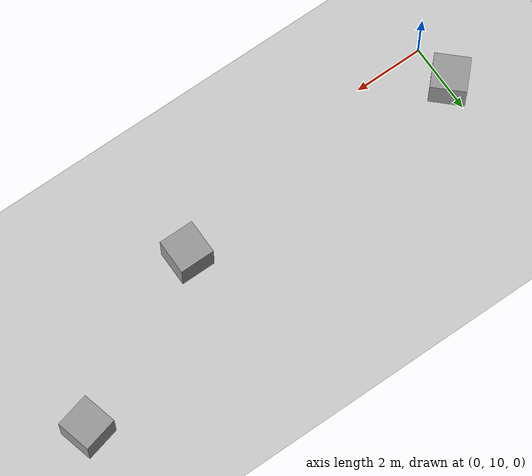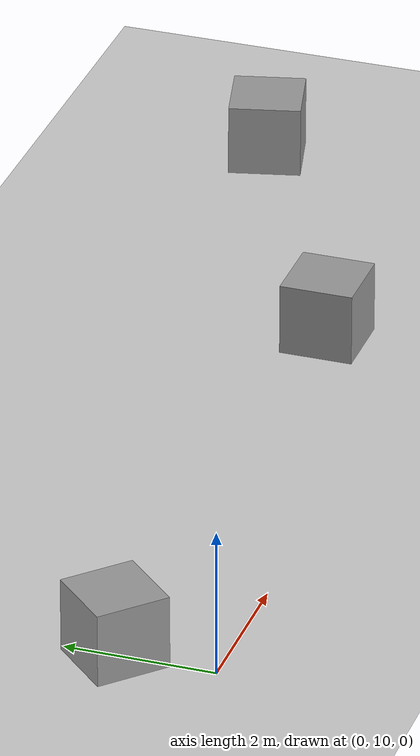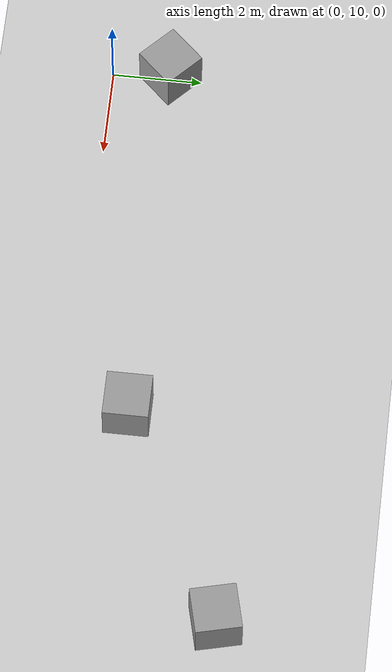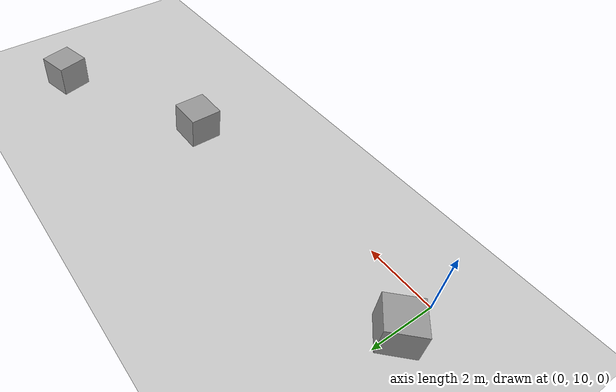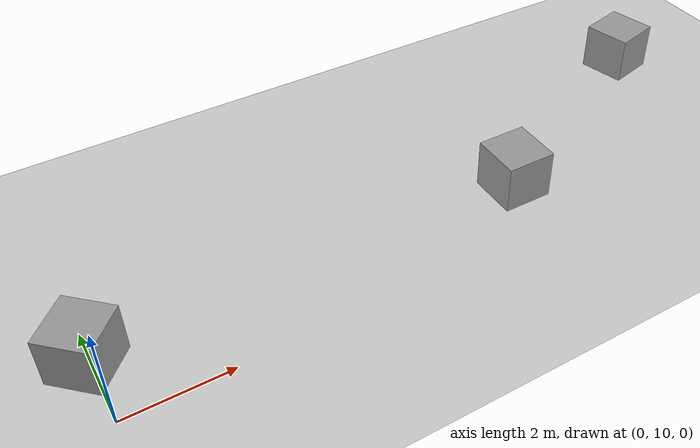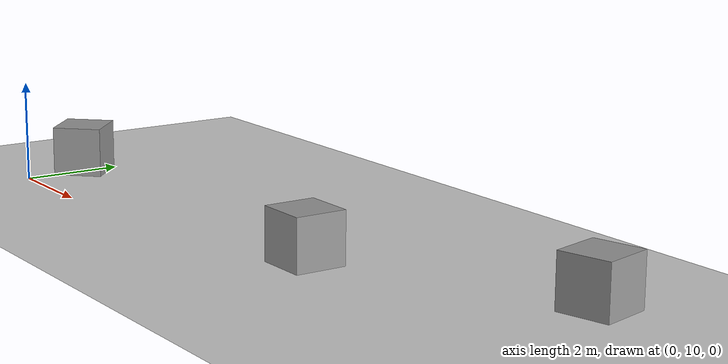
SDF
<sdf version="1.4">
 <world name="default">
  <light name="sun" type="directional">
   <pose>0 0 10 0 -0 0</pose>
   <diffuse>0.8 0.8 0.8 1</diffuse>
   <specular>0.2 0.2 0.2 1</specular>
   <attenuation>
    <range>1000</range>
    <constant>0.9</constant>
    <linear>0.01</linear>
    <quadratic>0.001</quadratic>
   </attenuation>
   <direction>-0.5 0.1 -0.9</direction>
  </light>
  <model name="ground_plane">
   <pose>0.207084 0.806571 0 0 -0 0</pose>
   <static>1</static>
   <link name="link">
    <collision name="collision">
     <geometry><plane><normal>0 0 1</normal><size>100 100</size></plane></geometry>
     <surface><friction><ode><mu>100</mu><mu2>50</mu2></ode></friction></surface>
    </collision>
    <visual name="visual">
     <cast_shadows>0</cast_shadows>
     <geometry><plane><normal>0 0 1</normal><size>100 100</size></plane></geometry>
     <material>
      <script><uri>file://media/materials/scripts/gazebo.material</uri><name>Gazebo/Grey</name></script>
     </material>
    </visual>
    <velocity_decay><linear>0</linear><angular>0</angular></velocity_decay>
   </link>
   <link name="Wall_16">
    <collision name="Wall_16_Collision">
     <geometry><box><size>3.80033 0.2 2.5</size></box></geometry>
     <pose>0 0 1.25 0 -0 0</pose>
    </collision>
    <visual name="Wall_16_Visual">
     <pose>0 0 1.25 0 -0 0</pose>
     <geometry><box><size>3.80033 0.2 2.5</size></box></geometry>
     <material>
      <script><uri>file://media/materials/scripts/gazebo.material</uri><name>Gazebo/Grey</name></script>
     </material>
    </visual>
    <velocity_decay><linear>0</linear><angular>0</angular></velocity_decay>
    <pose>-3.73953 -0.411999 0 0 0 -1.5708</pose>
   </link>
   <link name="Wall_18">
    <collision name="Wall_18_Collision">
     <geometry><box><size>11.9061 0.2 2.5</size></box></geometry>
     <pose>0 0 1.25 0 -0 0</pose>
    </collision>
    <visual name="Wall_18_Visual">
     <pose>0 0 1.25 0 -0 0</pose>
     <geometry><box><size>11.9061 0.2 2.5</size></box></geometry>
     <material>
      <script><uri>file://media/materials/scripts/gazebo.material</uri><name>Gazebo/Grey</name></script>
     </material>
    </visual>
    <velocity_decay><linear>0</linear><angular>0</angular></velocity_decay>
    <pose>2.09341 -2.23228 0 0 -0 0</pose>
   </link>
   <link name="Wall_19">
    <collision name="Wall_19_Collision">
     <geometry><box><size>3.78022 0.2 2.5</size></box></geometry>
     <pose>0 0 1.25 0 -0 0</pose>
    </collision>
    <visual name="Wall_19_Visual">
     <pose>0 0 1.25 0 -0 0</pose>
     <geometry><box><size>3.78022 0.2 2.5</size></box></geometry>
     <material>
      <script><uri>file://media/materials/scripts/gazebo.material</uri><name>Gazebo/Grey</name></script>
     </material>
    </visual>
    <velocity_decay><linear>0</linear><angular>0</angular></velocity_decay>
    <pose>7.94646 -0.442169 0 0 -0 1.5708</pose>
   </link>
   <link name="Wall_20">
    <collision name="Wall_20_Collision">
     <geometry><box><size>1.10511 0.2 2.5</size></box></geometry>
     <pose>0 0 1.25 0 -0 0</pose>
    </collision>
    <visual name="Wall_20_Visual">
     <pose>0 0 1.25 0 -0 0</pose>
     <geometry><box><size>1.10511 0.2 2.5</size></box></geometry>
     <material>
      <script><uri>file://media/materials/scripts/gazebo.material</uri><name>Gazebo/Grey</name></script>
     </material>
    </visual>
    <velocity_decay><linear>0</linear><angular>0</angular></velocity_decay>
    <pose>7.4939 1.34794 0 0 -0 3.14159</pose>
   </link>
   <link name="Wall_23">
    <collision name="Wall_23_Collision">
     <geometry><box><size>1.45615 0.2 2.5</size></box></geometry>
     <pose>0 0 1.25 0 -0 0</pose>
    </collision>
    <visual name="Wall_23_Visual">
     <pose>0 0 1.25 0 -0 0</pose>
     <geometry><box><size>1.45615 0.2 2.5</size></box></geometry>
     <material>
      <script><uri>file://media/materials/scripts/gazebo.material</uri><name>Gazebo/Grey</name></script>
     </material>
    </visual>
    <velocity_decay><linear>0</linear><angular>0</angular></velocity_decay>
    <pose>8.54655 1.33598 0 0 -0 0</pose>
   </link>
   <link name="Wall_24">
    <collision name="Wall_24_Collision">
     <geometry><box><size>0.990907 0.2 2.5</size></box></geometry>
     <pose>0 0 1.25 0 -0 0</pose>
    </collision>
    <visual name="Wall_24_Visual">
     <pose>0 0 1.25 0 -0 0</pose>
     <geometry><box><size>0.990907 0.2 2.5</size></box></geometry>
     <material>
      <script><uri>file://media/materials/scripts/gazebo.material</uri><name>Gazebo/Grey</name></script>
     </material>
    </visual>
    <velocity_decay><linear>0</linear><angular>0</angular></velocity_decay>
    <pose>9.17462 1.73144 0 0 -0 1.5708</pose>
   </link>
   <link name="Wall_25">
    <collision name="Wall_25_Collision">
     <geometry><box><size>16.3438 0.2 2.5</size></box></geometry>
     <pose>0 0 1.25 0 -0 0</pose>
    </collision>
    <visual name="Wall_25_Visual">
     <pose>0 0 1.25 0 -0 0</pose>
     <geometry><box><size>16.3438 0.2 2.5</size></box></geometry>
     <material>
      <script><uri>file://media/materials/scripts/gazebo.material</uri><name>Gazebo/Grey</name></script>
     </material>
    </visual>
    <velocity_decay><linear>0</linear><angular>0</angular></velocity_decay>
    <pose>17.2465 2.12689 0 0 -0 0</pose>
   </link>
   <link name="Wall_26">
    <collision name="Wall_26_Collision">
     <geometry><box><size>5.59677 0.2 2.5</size></box></geometry>
     <pose>0 0 1.25 0 -0 0</pose>
    </collision>
    <visual name="Wall_26_Visual">
     <pose>0 0 1.25 0 -0 0</pose>
     <geometry><box><size>5.59677 0.2 2.5</size></box></geometry>
     <material>
      <script><uri>file://media/materials/scripts/gazebo.material</uri><name>Gazebo/Grey</name></script>
     </material>
    </visual>
    <velocity_decay><linear>0</linear><angular>0</angular></velocity_decay>
    <pose>25.3184 4.82528 0 0 -0 1.5708</pose>
   </link>
   <link name="Wall_27">
    <collision name="Wall_27_Collision">
     <geometry><box><size>6.85292 0.2 2.5</size></box></geometry>
     <pose>0 0 1.25 0 -0 0</pose>
    </collision>
    <visual name="Wall_27_Visual">
     <pose>0 0 1.25 0 -0 0</pose>
     <geometry><box><size>6.85292 0.2 2.5</size></box></geometry>
     <material>
      <script><uri>file://media/materials/scripts/gazebo.material</uri><name>Gazebo/Grey</name></script>
     </material>
    </visual>
    <velocity_decay><linear>0</linear><angular>0</angular></velocity_decay>
    <pose>21.992 7.52367 0 0 -0 3.14159</pose>
   </link>
   <link name="Wall_29">
    <collision name="Wall_29_Collision">
     <geometry><box><size>6.57378 0.2 2.5</size></box></geometry>
     <pose>0 0 1.25 0 -0 0</pose>
    </collision>
    <visual name="Wall_29_Visual">
     <pose>0 0 1.25 0 -0 0</pose>
     <geometry><box><size>6.57378 0.2 2.5</size></box></geometry>
     <material>
      <script><uri>file://media/materials/scripts/gazebo.material</uri><name>Gazebo/Grey</name></script>
     </material>
    </visual>
    <velocity_decay><linear>0</linear><angular>0</angular></velocity_decay>
    <pose>12.4546 7.47714 0 0 -0 3.14159</pose>
   </link>
   <link name="Wall_34">
    <collision name="Wall_34_Collision">
     <geometry><box><size>1.84232 0.2 2.5</size></box></geometry>
     <pose>0 0 1.25 0 -0 0</pose>
    </collision>
    <visual name="Wall_34_Visual">
     <pose>0 0 1.25 0 -0 0</pose>
     <geometry><box><size>1.84232 0.2 2.5</size></box></geometry>
     <material>
      <script><uri>file://media/materials/scripts/gazebo.material</uri><name>Gazebo/Grey</name></script>
     </material>
    </visual>
    <velocity_decay><linear>0</linear><angular>0</angular></velocity_decay>
    <pose>9.17229 2.93644 0 0 -0 1.5708</pose>
   </link>
   <link name="Wall_37">
    <collision name="Wall_37_Collision">
     <geometry><box><size>1.38353 0.2 2.5</size></box></geometry>
     <pose>0 0 1.25 0 -0 0</pose>
    </collision>
    <visual name="Wall_37_Visual">
     <pose>0 0 1.25 0 -0 0</pose>
     <geometry><box><size>1.38353 0.2 2.5</size></box></geometry>
     <material>
      <script><uri>file://media/materials/scripts/gazebo.material</uri><name>Gazebo/Grey</name></script>
     </material>
    </visual>
    <velocity_decay><linear>0</linear><angular>0</angular></velocity_decay>
    <pose>9.2555 8.06153 0 0 -0 1.5708</pose>
   </link>
   <link name="Wall_44">
    <collision name="Wall_44_Collision">
     <geometry><box><size>14.3821 0.2 2.5</size></box></geometry>
     <pose>0 0 1.25 0 -0 0</pose>
    </collision>
    <visual name="Wall_44_Visual">
     <pose>0 0 1.25 0 -0 0</pose>
     <geometry><box><size>14.3821 0.2 2.5</size></box></geometry>
     <material>
      <script><uri>file://media/materials/scripts/gazebo.material</uri><name>Gazebo/Grey</name></script>
     </material>
    </visual>
    <velocity_decay><linear>0</linear><angular>0</angular></velocity_decay>
    <pose>25.3157 14.6721 0 0 -0 1.5708</pose>
   </link>
   <link name="Wall_45">
    <collision name="Wall_45_Collision">
     <geometry><box><size>3.98759 0.2 2.5</size></box></geometry>
     <pose>0 0 1.25 0 -0 0</pose>
    </collision>
    <visual name="Wall_45_Visual">
     <pose>0 0 1.25 0 -0 0</pose>
     <geometry><box><size>3.98759 0.2 2.5</size></box></geometry>
     <material>
      <script><uri>file://media/materials/scripts/gazebo.material</uri><name>Gazebo/Grey</name></script>
     </material>
    </visual>
    <velocity_decay><linear>0</linear><angular>0</angular></velocity_decay>
    <pose>23.422 21.7631 0 0 -0 3.14159</pose>
   </link>
   <link name="Wall_46">
    <collision name="Wall_46_Collision">
     <geometry><box><size>7.27924 0.2 2.5</size></box></geometry>
     <pose>0 0 1.25 0 -0 0</pose>
    </collision>
    <visual name="Wall_46_Visual">
     <pose>0 0 1.25 0 -0 0</pose>
     <geometry><box><size>7.27924 0.2 2.5</size></box></geometry>
     <material>
      <script><uri>file://media/materials/scripts/gazebo.material</uri><name>Gazebo/Grey</name></script>
     </material>
    </visual>
    <velocity_decay><linear>0</linear><angular>0</angular></velocity_decay>
    <pose>17.9885 21.7631 0 0 -0 3.14159</pose>
   </link>
   <link name="Wall_50">
    <collision name="Wall_50_Collision">
     <geometry><box><size>9.4854 0.2 2.5</size></box></geometry>
     <pose>0 0 1.25 0 -0 0</pose>
    </collision>
    <visual name="Wall_50_Visual">
     <pose>0 0 1.25 0 -0 0</pose>
     <geometry><box><size>9.4854 0.2 2.5</size></box></geometry>
     <material>
      <script><uri>file://media/materials/scripts/gazebo.material</uri><name>Gazebo/Grey</name></script>
     </material>
    </visual>
    <velocity_decay><linear>0</linear><angular>0</angular></velocity_decay>
    <pose>25.3024 26.3561 0 0 -0 1.5708</pose>
   </link>
   <link name="Wall_51">
    <collision name="Wall_51_Collision">
     <geometry><box><size>16.1995 0.2 2.5</size></box></geometry>
     <pose>0 0 1.25 0 -0 0</pose>
    </collision>
    <visual name="Wall_51_Visual">
     <pose>0 0 1.25 0 -0 0</pose>
     <geometry><box><size>16.1995 0.2 2.5</size></box></geometry>
     <material>
      <script><uri>file://media/materials/scripts/gazebo.material</uri><name>Gazebo/Grey</name></script>
     </material>
    </visual>
    <velocity_decay><linear>0</linear><angular>0</angular></velocity_decay>
    <pose>17.3026 30.9988 0 0 -0 3.14159</pose>
   </link>
   <link name="Wall_52">
    <collision name="Wall_52_Collision">
     <geometry><box><size>11.7384 0.2 2.5</size></box></geometry>
     <pose>0 0 1.25 0 -0 0</pose>
    </collision>
    <visual name="Wall_52_Visual">
     <pose>0 0 1.25 0 -0 0</pose>
     <geometry><box><size>11.7384 0.2 2.5</size></box></geometry>
     <material>
      <script><uri>file://media/materials/scripts/gazebo.material</uri><name>Gazebo/Grey</name></script>
     </material>
    </visual>
    <velocity_decay><linear>0</linear><angular>0</angular></velocity_decay>
    <pose>9.30287 25.2296 0 0 0 -1.5708</pose>
   </link>
   <link name="Wall_54">
    <collision name="Wall_54_Collision">
     <geometry><box><size>2.13813 0.2 2.5</size></box></geometry>
     <pose>0 0 1.25 0 -0 0</pose>
    </collision>
    <visual name="Wall_54_Visual">
     <pose>0 0 1.25 0 -0 0</pose>
     <geometry><box><size>2.13813 0.2 2.5</size></box></geometry>
     <material>
      <script><uri>file://media/materials/scripts/gazebo.material</uri><name>Gazebo/Grey</name></script>
     </material>
    </visual>
    <velocity_decay><linear>0</linear><angular>0</angular></velocity_decay>
    <pose>10.2754 21.7307 0 0 -0 0</pose>
   </link>
   <link name="Wall_62">
    <collision name="Wall_62_Collision">
     <geometry><box><size>13.5294 0.2 2.5</size></box></geometry>
     <pose>0 0 1.25 0 -0 0</pose>
    </collision>
    <visual name="Wall_62_Visual">
     <pose>0 0 1.25 0 -0 0</pose>
     <geometry><box><size>13.5294 0.2 2.5</size></box></geometry>
     <material>
      <script><uri>file://media/materials/scripts/gazebo.material</uri><name>Gazebo/Grey</name></script>
     </material>
    </visual>
    <velocity_decay><linear>0</linear><angular>0</angular></velocity_decay>
    <pose>-3.7362 8.0034 0 0 -0 1.5708</pose>
   </link>
   <link name="Wall_63">
    <collision name="Wall_63_Collision">
     <geometry><box><size>7.19668 0.2 2.5</size></box></geometry>
     <pose>0 0 1.25 0 -0 0</pose>
    </collision>
    <visual name="Wall_63_Visual">
     <pose>0 0 1.25 0 -0 0</pose>
     <geometry><box><size>7.19668 0.2 2.5</size></box></geometry>
     <material>
      <script><uri>file://media/materials/scripts/gazebo.material</uri><name>Gazebo/Grey</name></script>
     </material>
    </visual>
    <velocity_decay><linear>0</linear><angular>0</angular></velocity_decay>
    <pose>-0.237857 14.6681 0 0 -0 0</pose>
   </link>
   <link name="Wall_65">
    <collision name="Wall_65_Collision">
     <geometry><box><size>7.87371 0.2 2.5</size></box></geometry>
     <pose>0 0 1.25 0 -0 0</pose>
    </collision>
    <visual name="Wall_65_Visual">
     <pose>0 0 1.25 0 -0 0</pose>
     <geometry><box><size>7.87371 0.2 2.5</size></box></geometry>
     <material>
      <script><uri>file://media/materials/scripts/gazebo.material</uri><name>Gazebo/Grey</name></script>
     </material>
    </visual>
    <velocity_decay><linear>0</linear><angular>0</angular></velocity_decay>
    <pose>-3.70459 18.498 0 0 -0 1.5708</pose>
   </link>
   <link name="Wall_66">
    <collision name="Wall_66_Collision">
     <geometry><box><size>6.67789 0.2 2.5</size></box></geometry>
     <pose>0 0 1.25 0 -0 0</pose>
    </collision>
    <visual name="Wall_66_Visual">
     <pose>0 0 1.25 0 -0 0</pose>
     <geometry><box><size>6.67789 0.2 2.5</size></box></geometry>
     <material>
      <script><uri>file://media/materials/scripts/gazebo.material</uri><name>Gazebo/Grey</name></script>
     </material>
    </visual>
    <velocity_decay><linear>0</linear><angular>0</angular></velocity_decay>
    <pose>-0.46564 22.3348 0 0 -0 0</pose>
   </link>
   <link name="Wall_67">
    <collision name="Wall_67_Collision">
     <geometry><box><size>10.2321 0.2 2.5</size></box></geometry>
     <pose>0 0 1.25 0 -0 0</pose>
    </collision>
    <visual name="Wall_67_Visual">
     <pose>0 0 1.25 0 -0 0</pose>
     <geometry><box><size>10.2321 0.2 2.5</size></box></geometry>
     <material>
      <script><uri>file://media/materials/scripts/gazebo.material</uri><name>Gazebo/Grey</name></script>
     </material>
    </visual>
    <velocity_decay><linear>0</linear><angular>0</angular></velocity_decay>
    <pose>2.77331 27.3508 0 0 -0 1.5708</pose>
   </link>
   <link name="Wall_74">
    <collision name="Wall_74_Collision">
     <geometry><box><size>1.63126 0.2 2.5</size></box></geometry>
     <pose>0 0 1.25 0 -0 0</pose>
    </collision>
    <visual name="Wall_74_Visual">
     <pose>0 0 1.25 0 -0 0</pose>
     <geometry><box><size>1.63126 0.2 2.5</size></box></geometry>
     <material>
      <script><uri>file://media/materials/scripts/gazebo.material</uri><name>Gazebo/Grey</name></script>
     </material>
    </visual>
    <velocity_decay><linear>0</linear><angular>0</angular></velocity_decay>
    <pose>9.26213 31.7299 0 0 -0 1.5708</pose>
   </link>
   <link name="Wall_75">
    <collision name="Wall_75_Collision">
     <geometry><box><size>6.64067 0.2 2.5</size></box></geometry>
     <pose>0 0 1.25 0 -0 0</pose>
    </collision>
    <visual name="Wall_75_Visual">
     <pose>0 0 1.25 0 -0 0</pose>
     <geometry><box><size>6.64067 0.2 2.5</size></box></geometry>
     <material>
      <script><uri>file://media/materials/scripts/gazebo.material</uri><name>Gazebo/Grey</name></script>
     </material>
    </visual>
    <velocity_decay><linear>0</linear><angular>0</angular></velocity_decay>
    <pose>6.0418 32.4455 0 0 -0 3.14159</pose>
   </link>
   <link name="Wall_77">
    <collision name="Wall_77_Collision">
     <geometry><box><size>4.75417 0.2 2.5</size></box></geometry>
     <pose>0 0 1.25 0 -0 0</pose>
    </collision>
    <visual name="Wall_77_Visual">
     <pose>0 0 1.25 0 -0 0</pose>
     <geometry><box><size>4.75417 0.2 2.5</size></box></geometry>
     <material>
      <script><uri>file://media/materials/scripts/gazebo.material</uri><name>Gazebo/Grey</name></script>
     </material>
    </visual>
    <velocity_decay><linear>0</linear><angular>0</angular></velocity_decay>
    <pose>9.29076 14.5486 0 0 -0 1.5708</pose>
   </link>
   <link name="Wall_79">
    <collision name="Wall_79_Collision">
     <geometry><box><size>2.40592 0.2 2.5</size></box></geometry>
     <pose>0 0 1.25 0 -0 0</pose>
    </collision>
    <visual name="Wall_79_Visual">
     <pose>0 0 1.25 0 -0 0</pose>
     <geometry><box><size>2.40592 0.2 2.5</size></box></geometry>
     <material>
      <script><uri>file://media/materials/scripts/gazebo.material</uri><name>Gazebo/Grey</name></script>
     </material>
    </visual>
    <velocity_decay><linear>0</linear><angular>0</angular></velocity_decay>
    <pose>8.04548 14.6197 0 0 -0 3.14159</pose>
   </link>
   <link name="Wall_9">
    <collision name="Wall_9_Collision">
     <geometry><box><size>6.95816 0.2 2.5</size></box></geometry>
     <pose>0 0 1.25 0 -0 0</pose>
    </collision>
    <visual name="Wall_9_Visual">
     <pose>0 0 1.25 0 -0 0</pose>
     <geometry><box><size>6.95816 0.2 2.5</size></box></geometry>
     <material>
      <script><uri>file://media/materials/scripts/gazebo.material</uri><name>Gazebo/Grey</name></script>
     </material>
    </visual>
    <velocity_decay><linear>0</linear><angular>0</angular></velocity_decay>
   </link>
  </model>
  <physics type="ode">
   <max_step_size>0.001</max_step_size>
   <real_time_factor>1</real_time_factor>
   <real_time_update_rate>1000</real_time_update_rate>
   <gravity>0 0 -9.8</gravity>
  </physics>
  <scene><ambient>0.4 0.4 0.4 1</ambient><background>0.7 0.7 0.7 1</background><shadows>1</shadows></scene>
  <model name="unit_box_1">
   <pose>-0.054079 11.2988 0.5 0 0 -0.76</pose>
   <link name="link">
    <inertial>
     <mass>1</mass>
     <inertia><ixx>1</ixx><ixy>0</ixy><ixz>0</ixz><iyy>1</iyy><iyz>0</iyz><izz>1</izz></inertia>
    </inertial>
    <collision name="collision"><geometry><box><size>1 1 1</size></box></geometry></collision>
    <visual name="visual">
     <geometry><box><size>1 1 1</size></box></geometry>
     <material>
      <script><uri>file://media/materials/scripts/gazebo.material</uri><name>Gazebo/Grey</name></script>
     </material>
    </visual>
    <velocity_decay><linear>0</linear><angular>0</angular></velocity_decay>
   </link>
   <static>0</static>
  </model>
  <model name="unit_box_2">
   <pose>13.1437 13.6907 0.5 0 -0 0.24</pose>
   <link name="link">
    <inertial>
     <mass>1</mass>
     <inertia><ixx>1</ixx><ixy>0</ixy><ixz>0</ixz><iyy>1</iyy><iyz>0</iyz><izz>1</izz></inertia>
    </inertial>
    <collision name="collision"><geometry><box><size>1 1 1</size></box></geometry></collision>
    <visual name="visual">
     <geometry><box><size>1 1 1</size></box></geometry>
     <material>
      <script><uri>file://media/materials/scripts/gazebo.material</uri><name>Gazebo/Grey</name></script>
     </material>
    </visual>
    <velocity_decay><linear>0</linear><angular>0</angular></velocity_decay>
   </link>
   <static>0</static>
  </model>
  <model name="unit_box_3">
   <pose>8.41852 11.2921 0.5 0 -0 0</pose>
   <link name="link">
    <inertial>
     <mass>1</mass>
     <inertia><ixx>1</ixx><ixy>0</ixy><ixz>0</ixz><iyy>1</iyy><iyz>0</iyz><izz>1</izz></inertia>
    </inertial>
    <collision name="collision"><geometry><box><size>1 1 1</size></box></geometry></collision>
    <visual name="visual">
     <geometry><box><size>1 1 1</size></box></geometry>
     <material>
      <script><uri>file://media/materials/scripts/gazebo.material</uri><name>Gazebo/Grey</name></script>
     </material>
    </visual>
    <velocity_decay><linear>0</linear><angular>0</angular></velocity_decay>
   </link>
   <static>0</static>
  </model>
 </world>
</sdf>
